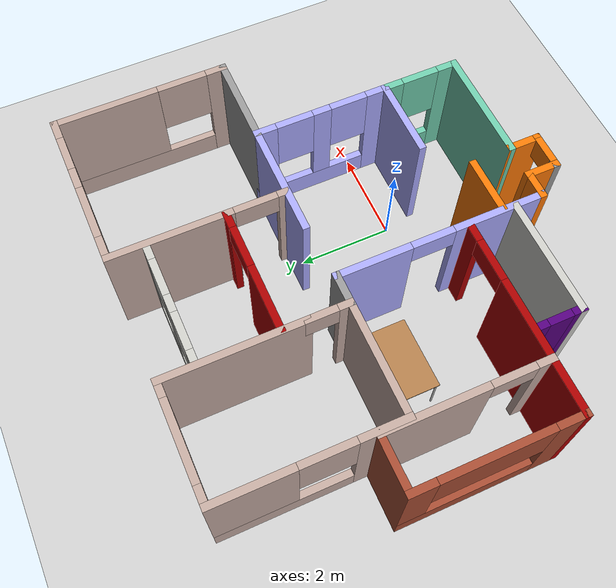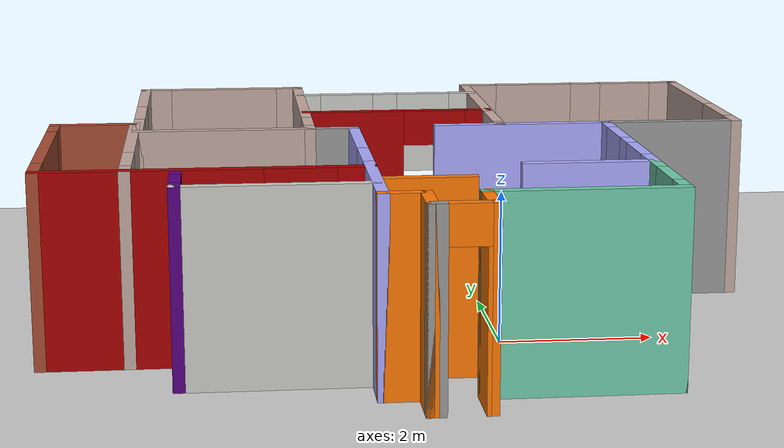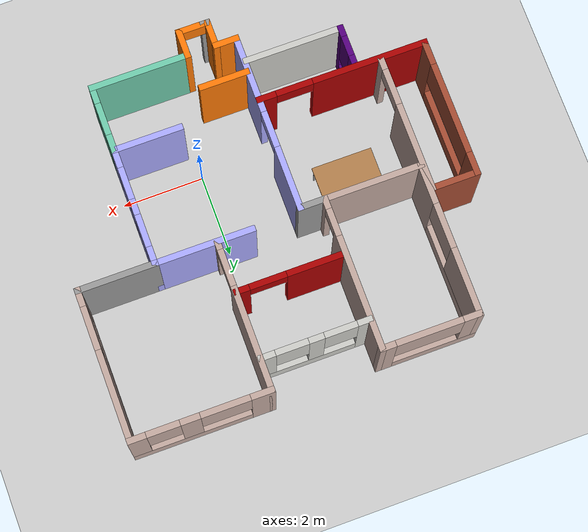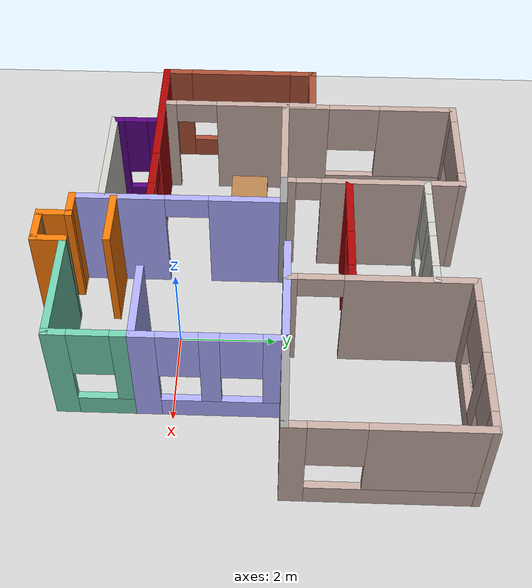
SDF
<sdf version="1.6">
 <world name="default">
  <model name="ground_plane">
   <static>1</static>
   <link name="link">
    <collision name="collision">
     <geometry><plane><normal>0 0 1</normal><size>100 100</size></plane></geometry>
     <surface>
      <contact><collide_bitmask>65535</collide_bitmask></contact>
      <friction><ode><mu>100</mu><mu2>50</mu2></ode></friction>
     </surface>
    </collision>
    <visual name="visual">
     <cast_shadows>0</cast_shadows>
     <geometry><plane><normal>0 0 1</normal><size>100 100</size></plane></geometry>
     <material>
      <script><uri>file://media/materials/scripts/gazebo.material</uri><name>Gazebo/Grey</name></script>
     </material>
    </visual>
   </link>
  </model>
  <model name="homeGoChaseIt">
   <pose>-1.07958 1.48988 0 0 -0 0</pose>
   <link name="Wall_0">
    <pose>0.249581 -4.33988 0 0 -0 0</pose>
    <visual name="Wall_0_Visual_0">
     <pose>-0.348103 0 1.25 0 -0 0</pose>
     <geometry><box><size>0.053794 0.15 2.5</size></box></geometry>
     <material>
      <script><uri>file://media/materials/scripts/gazebo.material</uri><name>Gazebo/Grey</name></script>
      <ambient>0.996078 0.47451 0.0196078 1</ambient>
     </material>
     <meta><layer>0</layer></meta>
    </visual>
    <collision name="Wall_0_Collision_0">
     <geometry><box><size>0.053794 0.15 2.5</size></box></geometry>
     <pose>-0.348103 0 1.25 0 -0 0</pose>
    </collision>
    <visual name="Wall_0_Visual_1">
     <pose>0.326897 0 1.25 0 -0 0</pose>
     <geometry><box><size>0.096206 0.15 2.5</size></box></geometry>
     <material>
      <script><uri>file://media/materials/scripts/gazebo.material</uri><name>Gazebo/Grey</name></script>
      <ambient>0.996078 0.47451 0.0196078 1</ambient>
     </material>
     <meta><layer>0</layer></meta>
    </visual>
    <collision name="Wall_0_Collision_1">
     <geometry><box><size>0.096206 0.15 2.5</size></box></geometry>
     <pose>0.326897 0 1.25 0 -0 0</pose>
    </collision>
    <visual name="Wall_0_Visual_2">
     <pose>-0.021206 0 2.25 0 -0 0</pose>
     <geometry><box><size>0.6 0.15 0.5</size></box></geometry>
     <material>
      <script><uri>file://media/materials/scripts/gazebo.material</uri><name>Gazebo/Grey</name></script>
      <ambient>0.996078 0.47451 0.0196078 1</ambient>
     </material>
     <meta><layer>0</layer></meta>
    </visual>
    <collision name="Wall_0_Collision_2">
     <geometry><box><size>0.6 0.15 0.5</size></box></geometry>
     <pose>-0.021206 0 2.25 0 -0 0</pose>
    </collision>
   </link>
   <link name="Wall_1">
    <collision name="Wall_1_Collision">
     <geometry><box><size>0.75 0.15 2.5</size></box></geometry>
     <pose>0 0 1.25 0 -0 0</pose>
    </collision>
    <visual name="Wall_1_Visual">
     <pose>0 0 1.25 0 -0 0</pose>
     <geometry><box><size>0.75 0.15 2.5</size></box></geometry>
     <material>
      <script><uri>file://media/materials/scripts/gazebo.material</uri><name>Gazebo/Grey</name></script>
      <ambient>0.996078 0.47451 0.0196078 1</ambient>
     </material>
     <meta><layer>0</layer></meta>
    </visual>
    <pose>0.549581 -4.03988 0 0 -0 1.5708</pose>
   </link>
   <link name="Wall_12">
    <pose>-0.650419 -1.56488 0 0 -0 1.5708</pose>
    <visual name="Wall_12_Visual_0">
     <pose>-1.2585 0 1.25 0 -0 0</pose>
     <geometry><box><size>1.983 0.15 2.5</size></box></geometry>
     <material>
      <script><uri>file://media/materials/scripts/gazebo.material</uri><name>Gazebo/Grey</name></script>
      <ambient>0.666667 0.666667 1 1</ambient>
     </material>
     <meta><layer>0</layer></meta>
    </visual>
    <collision name="Wall_12_Collision_0">
     <geometry><box><size>1.983 0.15 2.5</size></box></geometry>
     <pose>-1.2585 0 1.25 0 -0 0</pose>
    </collision>
    <visual name="Wall_12_Visual_1">
     <pose>1.4415 0 1.25 0 -0 0</pose>
     <geometry><box><size>1.617 0.15 2.5</size></box></geometry>
     <material>
      <script><uri>file://media/materials/scripts/gazebo.material</uri><name>Gazebo/Grey</name></script>
      <ambient>0.666667 0.666667 1 1</ambient>
     </material>
     <meta><layer>0</layer></meta>
    </visual>
    <collision name="Wall_12_Collision_1">
     <geometry><box><size>1.617 0.15 2.5</size></box></geometry>
     <pose>1.4415 0 1.25 0 -0 0</pose>
    </collision>
    <visual name="Wall_12_Visual_2">
     <pose>0.183002 0 2.25 0 -0 0</pose>
     <geometry><box><size>0.9 0.15 0.5</size></box></geometry>
     <material>
      <script><uri>file://media/materials/scripts/gazebo.material</uri><name>Gazebo/Grey</name></script>
      <ambient>0.666667 0.666667 1 1</ambient>
     </material>
     <meta><layer>0</layer></meta>
    </visual>
    <collision name="Wall_12_Collision_2">
     <geometry><box><size>0.9 0.15 0.5</size></box></geometry>
     <pose>0.183002 0 2.25 0 -0 0</pose>
    </collision>
   </link>
   <link name="Wall_16">
    <collision name="Wall_16_Collision">
     <geometry><box><size>0.75 0.15 2.5</size></box></geometry>
     <pose>0 0 1.25 0 -0 0</pose>
    </collision>
    <visual name="Wall_16_Visual">
     <pose>0 0 1.25 0 -0 0</pose>
     <geometry><box><size>0.75 0.15 2.5</size></box></geometry>
     <material>
      <script><uri>file://media/materials/scripts/gazebo.material</uri><name>Gazebo/Grey</name></script>
      <ambient>1 1 1 1</ambient>
     </material>
     <meta><layer>0</layer></meta>
    </visual>
    <pose>-0.950419 0.610124 0 0 -0 3.14159</pose>
   </link>
   <link name="Wall_17">
    <pose>-1.25042 1.03512 0 0 -0 1.5708</pose>
    <visual name="Wall_17_Visual_0">
     <pose>-0.337999 0 1.25 0 -0 0</pose>
     <geometry><box><size>0.324002 0.15 2.5</size></box></geometry>
     <material>
      <script><uri>file://media/materials/scripts/gazebo.material</uri><name>Gazebo/Grey</name></script>
      <ambient>0.760784 0.662745 0.627451 1</ambient>
     </material>
     <meta><layer>0</layer></meta>
    </visual>
    <collision name="Wall_17_Collision_0">
     <geometry><box><size>0.324002 0.15 2.5</size></box></geometry>
     <pose>-0.337999 0 1.25 0 -0 0</pose>
    </collision>
    <visual name="Wall_17_Visual_1">
     <pose>0.162001 0 2.25 0 -0 0</pose>
     <geometry><box><size>0.675998 0.15 0.5</size></box></geometry>
     <material>
      <script><uri>file://media/materials/scripts/gazebo.material</uri><name>Gazebo/Grey</name></script>
      <ambient>0.760784 0.662745 0.627451 1</ambient>
     </material>
     <meta><layer>0</layer></meta>
    </visual>
    <collision name="Wall_17_Collision_1">
     <geometry><box><size>0.675998 0.15 0.5</size></box></geometry>
     <pose>0.162001 0 2.25 0 -0 0</pose>
    </collision>
   </link>
   <link name="Wall_2">
    <collision name="Wall_2_Collision">
     <geometry><box><size>2.5 0.15 2.5</size></box></geometry>
     <pose>0 0 1.25 0 -0 0</pose>
    </collision>
    <visual name="Wall_2_Visual">
     <pose>0 0 1.25 0 -0 0</pose>
     <geometry><box><size>2.5 0.15 2.5</size></box></geometry>
     <material>
      <script><uri>file://media/materials/scripts/gazebo.material</uri><name>Gazebo/Grey</name></script>
      <ambient>0.435294 0.796078 0.67451 1</ambient>
     </material>
     <meta><layer>0</layer></meta>
    </visual>
    <pose>1.72458 -3.73988 0 0 -0 0</pose>
   </link>
   <link name="Wall_21">
    <collision name="Wall_21_Collision">
     <geometry><box><size>3 0.15 2.5</size></box></geometry>
     <pose>0 0 1.25 0 -0 0</pose>
    </collision>
    <visual name="Wall_21_Visual">
     <pose>0 0 1.25 0 -0 0</pose>
     <geometry><box><size>3 0.15 2.5</size></box></geometry>
     <material>
      <script><uri>file://media/materials/scripts/gazebo.material</uri><name>Gazebo/Grey</name></script>
      <ambient>0.760784 0.662745 0.627451 1</ambient>
     </material>
     <meta><layer>0</layer></meta>
    </visual>
    <pose>-1.25042 2.88512 0 0 -0 1.5708</pose>
   </link>
   <link name="Wall_22">
    <pose>-2.42542 4.31012 0 0 -0 3.14159</pose>
    <visual name="Wall_22_Visual_0">
     <pose>-1.0479 0 1.25 0 -0 0</pose>
     <geometry><box><size>0.404205 0.15 2.5</size></box></geometry>
     <material>
      <script><uri>file://media/materials/scripts/gazebo.material</uri><name>Gazebo/Grey</name></script>
      <ambient>0.760784 0.662745 0.627451 1</ambient>
     </material>
     <meta><layer>0</layer></meta>
    </visual>
    <collision name="Wall_22_Collision_0">
     <geometry><box><size>0.404205 0.15 2.5</size></box></geometry>
     <pose>-1.0479 0 1.25 0 -0 0</pose>
    </collision>
    <visual name="Wall_22_Visual_1">
     <pose>0.202103 0 0.25 0 -0 0</pose>
     <geometry><box><size>2.09579 0.15 0.5</size></box></geometry>
     <material>
      <script><uri>file://media/materials/scripts/gazebo.material</uri><name>Gazebo/Grey</name></script>
      <ambient>0.760784 0.662745 0.627451 1</ambient>
     </material>
     <meta><layer>0</layer></meta>
    </visual>
    <collision name="Wall_22_Collision_1">
     <geometry><box><size>2.09579 0.15 0.5</size></box></geometry>
     <pose>0.202103 0 0.25 0 -0 0</pose>
    </collision>
    <visual name="Wall_22_Visual_2">
     <pose>1.0161 0 1.5 0 -0 0</pose>
     <geometry><box><size>0.467795 0.15 2</size></box></geometry>
     <material>
      <script><uri>file://media/materials/scripts/gazebo.material</uri><name>Gazebo/Grey</name></script>
      <ambient>0.760784 0.662745 0.627451 1</ambient>
     </material>
     <meta><layer>0</layer></meta>
    </visual>
    <collision name="Wall_22_Collision_2">
     <geometry><box><size>0.467795 0.15 2</size></box></geometry>
     <pose>1.0161 0 1.5 0 -0 0</pose>
    </collision>
    <visual name="Wall_22_Visual_3">
     <pose>-0.031795 0 1.9 0 -0 0</pose>
     <geometry><box><size>1.628 0.15 1.2</size></box></geometry>
     <material>
      <script><uri>file://media/materials/scripts/gazebo.material</uri><name>Gazebo/Grey</name></script>
      <ambient>0.760784 0.662745 0.627451 1</ambient>
     </material>
     <meta><layer>0</layer></meta>
    </visual>
    <collision name="Wall_22_Collision_3">
     <geometry><box><size>1.628 0.15 1.2</size></box></geometry>
     <pose>-0.031795 0 1.9 0 -0 0</pose>
    </collision>
   </link>
   <link name="Wall_26">
    <pose>0.079375 3.58613 0 0 -0 0</pose>
    <visual name="Wall_26_Visual_0">
     <pose>-1.1925 0 1.25 0 -0 0</pose>
     <geometry><box><size>0.365 0.15 2.5</size></box></geometry>
     <material>
      <script><uri>file://media/materials/scripts/gazebo.material</uri><name>Gazebo/CeilingTiled</name></script>
      <ambient>1 1 1 1</ambient>
     </material>
     <meta><layer>0</layer></meta>
    </visual>
    <collision name="Wall_26_Collision_0">
     <geometry><box><size>0.365 0.15 2.5</size></box></geometry>
     <pose>-1.1925 0 1.25 0 -0 0</pose>
    </collision>
    <visual name="Wall_26_Visual_1">
     <pose>0.1825 0 0.25 0 -0 0</pose>
     <geometry><box><size>2.385 0.15 0.5</size></box></geometry>
     <material>
      <script><uri>file://media/materials/scripts/gazebo.material</uri><name>Gazebo/CeilingTiled</name></script>
      <ambient>1 1 1 1</ambient>
     </material>
     <meta><layer>0</layer></meta>
    </visual>
    <collision name="Wall_26_Collision_1">
     <geometry><box><size>2.385 0.15 0.5</size></box></geometry>
     <pose>0.1825 0 0.25 0 -0 0</pose>
    </collision>
    <visual name="Wall_26_Visual_2">
     <pose>-0.0235 0 1.5 0 -0 0</pose>
     <geometry><box><size>0.373 0.15 2</size></box></geometry>
     <material>
      <script><uri>file://media/materials/scripts/gazebo.material</uri><name>Gazebo/CeilingTiled</name></script>
      <ambient>1 1 1 1</ambient>
     </material>
     <meta><layer>0</layer></meta>
    </visual>
    <collision name="Wall_26_Collision_2">
     <geometry><box><size>0.373 0.15 2</size></box></geometry>
     <pose>-0.0235 0 1.5 0 -0 0</pose>
    </collision>
    <visual name="Wall_26_Visual_3">
     <pose>1.169 0 1.5 0 -0 0</pose>
     <geometry><box><size>0.412 0.15 2</size></box></geometry>
     <material>
      <script><uri>file://media/materials/scripts/gazebo.material</uri><name>Gazebo/CeilingTiled</name></script>
      <ambient>1 1 1 1</ambient>
     </material>
     <meta><layer>0</layer></meta>
    </visual>
    <collision name="Wall_26_Collision_3">
     <geometry><box><size>0.412 0.15 2</size></box></geometry>
     <pose>1.169 0 1.5 0 -0 0</pose>
    </collision>
    <visual name="Wall_26_Visual_4">
     <pose>-0.61 0 1.9 0 -0 0</pose>
     <geometry><box><size>0.8 0.15 1.2</size></box></geometry>
     <material>
      <script><uri>file://media/materials/scripts/gazebo.material</uri><name>Gazebo/CeilingTiled</name></script>
      <ambient>1 1 1 1</ambient>
     </material>
     <meta><layer>0</layer></meta>
    </visual>
    <collision name="Wall_26_Collision_4">
     <geometry><box><size>0.8 0.15 1.2</size></box></geometry>
     <pose>-0.61 0 1.9 0 -0 0</pose>
    </collision>
    <visual name="Wall_26_Visual_5">
     <pose>0.563 0 1.9 0 -0 0</pose>
     <geometry><box><size>0.8 0.15 1.2</size></box></geometry>
     <material>
      <script><uri>file://media/materials/scripts/gazebo.material</uri><name>Gazebo/CeilingTiled</name></script>
      <ambient>1 1 1 1</ambient>
     </material>
     <meta><layer>0</layer></meta>
    </visual>
    <collision name="Wall_26_Collision_5">
     <geometry><box><size>0.8 0.15 1.2</size></box></geometry>
     <pose>0.563 0 1.9 0 -0 0</pose>
    </collision>
   </link>
   <link name="Wall_3">
    <pose>2.89958 -2.93988 0 0 -0 1.5708</pose>
    <visual name="Wall_3_Visual_0">
     <pose>-0.634749 0 1.25 0 -0 0</pose>
     <geometry><box><size>0.480502 0.15 2.5</size></box></geometry>
     <material>
      <script><uri>file://media/materials/scripts/gazebo.material</uri><name>Gazebo/Grey</name></script>
      <ambient>0.435294 0.796078 0.67451 1</ambient>
     </material>
     <meta><layer>0</layer></meta>
    </visual>
    <collision name="Wall_3_Collision_0">
     <geometry><box><size>0.480502 0.15 2.5</size></box></geometry>
     <pose>-0.634749 0 1.25 0 -0 0</pose>
    </collision>
    <visual name="Wall_3_Visual_1">
     <pose>0.240251 0 0.25 0 -0 0</pose>
     <geometry><box><size>1.2695 0.15 0.5</size></box></geometry>
     <material>
      <script><uri>file://media/materials/scripts/gazebo.material</uri><name>Gazebo/Grey</name></script>
      <ambient>0.435294 0.796078 0.67451 1</ambient>
     </material>
     <meta><layer>0</layer></meta>
    </visual>
    <collision name="Wall_3_Collision_1">
     <geometry><box><size>1.2695 0.15 0.5</size></box></geometry>
     <pose>0.240251 0 0.25 0 -0 0</pose>
    </collision>
    <visual name="Wall_3_Visual_2">
     <pose>0.640251 0 1.5 0 -0 0</pose>
     <geometry><box><size>0.469498 0.15 2</size></box></geometry>
     <material>
      <script><uri>file://media/materials/scripts/gazebo.material</uri><name>Gazebo/Grey</name></script>
      <ambient>0.435294 0.796078 0.67451 1</ambient>
     </material>
     <meta><layer>0</layer></meta>
    </visual>
    <collision name="Wall_3_Collision_2">
     <geometry><box><size>0.469498 0.15 2</size></box></geometry>
     <pose>0.640251 0 1.5 0 -0 0</pose>
    </collision>
    <visual name="Wall_3_Visual_3">
     <pose>0.005502 0 1.9 0 -0 0</pose>
     <geometry><box><size>0.8 0.15 1.2</size></box></geometry>
     <material>
      <script><uri>file://media/materials/scripts/gazebo.material</uri><name>Gazebo/Grey</name></script>
      <ambient>0.435294 0.796078 0.67451 1</ambient>
     </material>
     <meta><layer>0</layer></meta>
    </visual>
    <collision name="Wall_3_Collision_3">
     <geometry><box><size>0.8 0.15 1.2</size></box></geometry>
     <pose>0.005502 0 1.9 0 -0 0</pose>
    </collision>
   </link>
   <link name="Wall_36">
    <collision name="Wall_36_Collision">
     <geometry><box><size>0.25 0.15 2.5</size></box></geometry>
     <pose>0 0 1.25 0 -0 0</pose>
    </collision>
    <visual name="Wall_36_Visual">
     <pose>0 0 1.25 0 -0 0</pose>
     <geometry><box><size>0.25 0.15 2.5</size></box></geometry>
     <material>
      <script><uri>file://media/materials/scripts/gazebo.material</uri><name>Gazebo/Grey</name></script>
      <ambient>1 1 1 1</ambient>
     </material>
     <meta><layer>0</layer></meta>
    </visual>
    <pose>-0.100419 -4.33988 0 0 -0 3.14159</pose>
   </link>
   <link name="Wall_37">
    <collision name="Wall_37_Collision">
     <geometry><box><size>0.75 0.15 2.5</size></box></geometry>
     <pose>0 0 1.25 0 -0 0</pose>
    </collision>
    <visual name="Wall_37_Visual">
     <pose>0 0 1.25 0 -0 0</pose>
     <geometry><box><size>0.75 0.15 2.5</size></box></geometry>
     <material>
      <script><uri>file://media/materials/scripts/gazebo.material</uri><name>Gazebo/Grey</name></script>
      <ambient>0.996078 0.47451 0.0196078 1</ambient>
     </material>
     <meta><layer>0</layer></meta>
    </visual>
    <pose>-0.150419 -4.03988 0 0 -0 1.5708</pose>
   </link>
   <link name="Wall_38">
    <collision name="Wall_38_Collision">
     <geometry><box><size>0.65 0.15 2.5</size></box></geometry>
     <pose>0 0 1.25 0 -0 0</pose>
    </collision>
    <visual name="Wall_38_Visual">
     <pose>0 0 1.25 0 -0 0</pose>
     <geometry><box><size>0.65 0.15 2.5</size></box></geometry>
     <material>
      <script><uri>file://media/materials/scripts/gazebo.material</uri><name>Gazebo/Grey</name></script>
      <ambient>0.996078 0.47451 0.0196078 1</ambient>
     </material>
     <meta><layer>0</layer></meta>
    </visual>
    <pose>-0.400419 -3.73988 0 0 -0 3.14159</pose>
   </link>
   <link name="Wall_40">
    <collision name="Wall_40_Collision">
     <geometry><box><size>2.5 0.15 2.5</size></box></geometry>
     <pose>0 0 1.25 0 -0 0</pose>
    </collision>
    <visual name="Wall_40_Visual">
     <pose>0 0 1.25 0 -0 0</pose>
     <geometry><box><size>2.5 0.15 2.5</size></box></geometry>
     <material>
      <script><uri>file://media/materials/scripts/gazebo.material</uri><name>Gazebo/Grey</name></script>
      <ambient>0.760784 0.662745 0.627451 1</ambient>
     </material>
     <meta><layer>0</layer></meta>
    </visual>
    <pose>-2.42542 0.610124 0 0 -0 3.14159</pose>
   </link>
   <link name="Wall_41">
    <pose>-3.60042 2.46012 0 0 -0 1.5708</pose>
    <visual name="Wall_41_Visual_0">
     <pose>-1.40162 0 1.25 0 -0 0</pose>
     <geometry><box><size>1.04675 0.15 2.5</size></box></geometry>
     <material>
      <script><uri>file://media/materials/scripts/gazebo.material</uri><name>Gazebo/Grey</name></script>
      <ambient>0.760784 0.662745 0.627451 1</ambient>
     </material>
     <meta><layer>0</layer></meta>
    </visual>
    <collision name="Wall_41_Collision_0">
     <geometry><box><size>1.04675 0.15 2.5</size></box></geometry>
     <pose>-1.40162 0 1.25 0 -0 0</pose>
    </collision>
    <visual name="Wall_41_Visual_1">
     <pose>0.523376 0 0.25 0 -0 0</pose>
     <geometry><box><size>2.80325 0.15 0.5</size></box></geometry>
     <material>
      <script><uri>file://media/materials/scripts/gazebo.material</uri><name>Gazebo/Grey</name></script>
      <ambient>0.760784 0.662745 0.627451 1</ambient>
     </material>
     <meta><layer>0</layer></meta>
    </visual>
    <collision name="Wall_41_Collision_1">
     <geometry><box><size>2.80325 0.15 0.5</size></box></geometry>
     <pose>0.523376 0 0.25 0 -0 0</pose>
    </collision>
    <visual name="Wall_41_Visual_2">
     <pose>1.07863 0 1.5 0 -0 0</pose>
     <geometry><box><size>1.69275 0.15 2</size></box></geometry>
     <material>
      <script><uri>file://media/materials/scripts/gazebo.material</uri><name>Gazebo/Grey</name></script>
      <ambient>0.760784 0.662745 0.627451 1</ambient>
     </material>
     <meta><layer>0</layer></meta>
    </visual>
    <collision name="Wall_41_Collision_2">
     <geometry><box><size>1.69275 0.15 2</size></box></geometry>
     <pose>1.07863 0 1.5 0 -0 0</pose>
    </collision>
    <visual name="Wall_41_Visual_3">
     <pose>-0.322998 0 1.9 0 -0 0</pose>
     <geometry><box><size>1.1105 0.15 1.2</size></box></geometry>
     <material>
      <script><uri>file://media/materials/scripts/gazebo.material</uri><name>Gazebo/Grey</name></script>
      <ambient>0.760784 0.662745 0.627451 1</ambient>
     </material>
     <meta><layer>0</layer></meta>
    </visual>
    <collision name="Wall_41_Collision_3">
     <geometry><box><size>1.1105 0.15 1.2</size></box></geometry>
     <pose>-0.322998 0 1.9 0 -0 0</pose>
    </collision>
   </link>
   <link name="Wall_43">
    <collision name="Wall_43_Collision">
     <geometry><box><size>2 0.15 2.5</size></box></geometry>
     <pose>0 0 1.25 0 -0 0</pose>
    </collision>
    <visual name="Wall_43_Visual">
     <pose>0 0 1.25 0 -0 0</pose>
     <geometry><box><size>2 0.15 2.5</size></box></geometry>
     <material>
      <script><uri>file://media/materials/scripts/gazebo.material</uri><name>Gazebo/Grey</name></script>
      <ambient>1 1 1 1</ambient>
     </material>
     <meta><layer>0</layer></meta>
    </visual>
    <pose>3.82458 0.710124 0 0 -0 0</pose>
   </link>
   <link name="Wall_44">
    <pose>4.74958 2.51012 0 0 -0 1.5708</pose>
    <visual name="Wall_44_Visual_0">
     <pose>-1.64312 0 1.25 0 -0 0</pose>
     <geometry><box><size>0.463752 0.15 2.5</size></box></geometry>
     <material>
      <script><uri>file://media/materials/scripts/gazebo.material</uri><name>Gazebo/Grey</name></script>
      <ambient>0.760784 0.662745 0.627451 1</ambient>
     </material>
     <meta><layer>0</layer></meta>
    </visual>
    <collision name="Wall_44_Collision_0">
     <geometry><box><size>0.463752 0.15 2.5</size></box></geometry>
     <pose>-1.64312 0 1.25 0 -0 0</pose>
    </collision>
    <visual name="Wall_44_Visual_1">
     <pose>0.231876 0 0.25 0 -0 0</pose>
     <geometry><box><size>3.28625 0.15 0.5</size></box></geometry>
     <material>
      <script><uri>file://media/materials/scripts/gazebo.material</uri><name>Gazebo/Grey</name></script>
      <ambient>0.760784 0.662745 0.627451 1</ambient>
     </material>
     <meta><layer>0</layer></meta>
    </visual>
    <collision name="Wall_44_Collision_1">
     <geometry><box><size>3.28625 0.15 0.5</size></box></geometry>
     <pose>0.231876 0 0.25 0 -0 0</pose>
    </collision>
    <visual name="Wall_44_Visual_2">
     <pose>0.761251 0 1.5 0 -0 0</pose>
     <geometry><box><size>2.2275 0.15 2</size></box></geometry>
     <material>
      <script><uri>file://media/materials/scripts/gazebo.material</uri><name>Gazebo/Grey</name></script>
      <ambient>0.760784 0.662745 0.627451 1</ambient>
     </material>
     <meta><layer>0</layer></meta>
    </visual>
    <collision name="Wall_44_Collision_2">
     <geometry><box><size>2.2275 0.15 2</size></box></geometry>
     <pose>0.761251 0 1.5 0 -0 0</pose>
    </collision>
    <visual name="Wall_44_Visual_3">
     <pose>-0.881873 0 1.9 0 -0 0</pose>
     <geometry><box><size>1.05875 0.15 1.2</size></box></geometry>
     <material>
      <script><uri>file://media/materials/scripts/gazebo.material</uri><name>Gazebo/Grey</name></script>
      <ambient>0.760784 0.662745 0.627451 1</ambient>
     </material>
     <meta><layer>0</layer></meta>
    </visual>
    <collision name="Wall_44_Collision_3">
     <geometry><box><size>1.05875 0.15 1.2</size></box></geometry>
     <pose>-0.881873 0 1.9 0 -0 0</pose>
    </collision>
   </link>
   <link name="Wall_46">
    <pose>1.40138 2.53988 0 0 -0 1.5708</pose>
    <visual name="Wall_46_Visual_0">
     <pose>-1.752 0 1.25 0 -0 0</pose>
     <geometry><box><size>0.246 0.15 2.5</size></box></geometry>
     <material>
      <script><uri>file://media/materials/scripts/gazebo.material</uri><name>Gazebo/Grey</name></script>
      <ambient>0.760784 0.662745 0.627451 1</ambient>
     </material>
     <meta><layer>0</layer></meta>
    </visual>
    <collision name="Wall_46_Collision_0">
     <geometry><box><size>0.246 0.15 2.5</size></box></geometry>
     <pose>-1.752 0 1.25 0 -0 0</pose>
    </collision>
    <visual name="Wall_46_Visual_1">
     <pose>0.573 0 1.25 0 -0 0</pose>
     <geometry><box><size>2.604 0.15 2.5</size></box></geometry>
     <material>
      <script><uri>file://media/materials/scripts/gazebo.material</uri><name>Gazebo/Grey</name></script>
      <ambient>0.760784 0.662745 0.627451 1</ambient>
     </material>
     <meta><layer>0</layer></meta>
    </visual>
    <collision name="Wall_46_Collision_1">
     <geometry><box><size>2.604 0.15 2.5</size></box></geometry>
     <pose>0.573 0 1.25 0 -0 0</pose>
    </collision>
    <visual name="Wall_46_Visual_2">
     <pose>-1.179 0 2.25 0 -0 0</pose>
     <geometry><box><size>0.9 0.15 0.5</size></box></geometry>
     <material>
      <script><uri>file://media/materials/scripts/gazebo.material</uri><name>Gazebo/Grey</name></script>
      <ambient>0.760784 0.662745 0.627451 1</ambient>
     </material>
     <meta><layer>0</layer></meta>
    </visual>
    <collision name="Wall_46_Collision_2">
     <geometry><box><size>0.9 0.15 0.5</size></box></geometry>
     <pose>-1.179 0 2.25 0 -0 0</pose>
    </collision>
   </link>
   <link name="Wall_47">
    <pose>3.07638 4.33988 0 0 -0 0</pose>
    <visual name="Wall_47_Visual_0">
     <pose>-1.464 0 1.25 0 -0 0</pose>
     <geometry><box><size>0.572 0.15 2.5</size></box></geometry>
     <material>
      <script><uri>file://media/materials/scripts/gazebo.material</uri><name>Gazebo/Grey</name></script>
      <ambient>0.760784 0.662745 0.627451 1</ambient>
     </material>
     <meta><layer>0</layer></meta>
    </visual>
    <collision name="Wall_47_Collision_0">
     <geometry><box><size>0.572 0.15 2.5</size></box></geometry>
     <pose>-1.464 0 1.25 0 -0 0</pose>
    </collision>
    <visual name="Wall_47_Visual_1">
     <pose>0.286 0 0.25 0 -0 0</pose>
     <geometry><box><size>2.928 0.15 0.5</size></box></geometry>
     <material>
      <script><uri>file://media/materials/scripts/gazebo.material</uri><name>Gazebo/Grey</name></script>
      <ambient>0.760784 0.662745 0.627451 1</ambient>
     </material>
     <meta><layer>0</layer></meta>
    </visual>
    <collision name="Wall_47_Collision_1">
     <geometry><box><size>2.928 0.15 0.5</size></box></geometry>
     <pose>0.286 0 0.25 0 -0 0</pose>
    </collision>
    <visual name="Wall_47_Visual_2">
     <pose>0.257 0 1.5 0 -0 0</pose>
     <geometry><box><size>0.4765 0.15 2</size></box></geometry>
     <material>
      <script><uri>file://media/materials/scripts/gazebo.material</uri><name>Gazebo/Grey</name></script>
      <ambient>0.760784 0.662745 0.627451 1</ambient>
     </material>
     <meta><layer>0</layer></meta>
    </visual>
    <collision name="Wall_47_Collision_2">
     <geometry><box><size>0.4765 0.15 2</size></box></geometry>
     <pose>0.257 0 1.5 0 -0 0</pose>
    </collision>
    <visual name="Wall_47_Visual_3">
     <pose>1.52262 0 1.5 0 -0 0</pose>
     <geometry><box><size>0.45475 0.15 2</size></box></geometry>
     <material>
      <script><uri>file://media/materials/scripts/gazebo.material</uri><name>Gazebo/Grey</name></script>
      <ambient>0.760784 0.662745 0.627451 1</ambient>
     </material>
     <meta><layer>0</layer></meta>
    </visual>
    <collision name="Wall_47_Collision_3">
     <geometry><box><size>0.45475 0.15 2</size></box></geometry>
     <pose>1.52262 0 1.5 0 -0 0</pose>
    </collision>
    <visual name="Wall_47_Visual_4">
     <pose>-0.579625 0 1.9 0 -0 0</pose>
     <geometry><box><size>1.19675 0.15 1.2</size></box></geometry>
     <material>
      <script><uri>file://media/materials/scripts/gazebo.material</uri><name>Gazebo/Grey</name></script>
      <ambient>0.760784 0.662745 0.627451 1</ambient>
     </material>
     <meta><layer>0</layer></meta>
    </visual>
    <collision name="Wall_47_Collision_4">
     <geometry><box><size>1.19675 0.15 1.2</size></box></geometry>
     <pose>-0.579625 0 1.9 0 -0 0</pose>
    </collision>
    <visual name="Wall_47_Visual_5">
     <pose>0.89525 0 1.9 0 -0 0</pose>
     <geometry><box><size>0.8 0.15 1.2</size></box></geometry>
     <material>
      <script><uri>file://media/materials/scripts/gazebo.material</uri><name>Gazebo/Grey</name></script>
      <ambient>0.760784 0.662745 0.627451 1</ambient>
     </material>
     <meta><layer>0</layer></meta>
    </visual>
    <collision name="Wall_47_Collision_5">
     <geometry><box><size>0.8 0.15 1.2</size></box></geometry>
     <pose>0.89525 0 1.9 0 -0 0</pose>
    </collision>
   </link>
   <link name="Wall_49">
    <pose>-2.70138 -2.14087 0 0 -0 3.14159</pose>
    <visual name="Wall_49_Visual_0">
     <pose>-1.88125 0 1.25 0 -0 0</pose>
     <geometry><box><size>0.4875 0.15 2.5</size></box></geometry>
     <material>
      <script><uri>file://media/materials/scripts/gazebo.material</uri><name>Gazebo/Grey</name></script>
      <ambient>0.666667 0 0 1</ambient>
     </material>
     <meta><layer>0</layer></meta>
    </visual>
    <collision name="Wall_49_Collision_0">
     <geometry><box><size>0.4875 0.15 2.5</size></box></geometry>
     <pose>-1.88125 0 1.25 0 -0 0</pose>
    </collision>
    <visual name="Wall_49_Visual_1">
     <pose>0.69375 0 1.25 0 -0 0</pose>
     <geometry><box><size>2.8625 0.15 2.5</size></box></geometry>
     <material>
      <script><uri>file://media/materials/scripts/gazebo.material</uri><name>Gazebo/Grey</name></script>
      <ambient>0.666667 0 0 1</ambient>
     </material>
     <meta><layer>0</layer></meta>
    </visual>
    <collision name="Wall_49_Collision_1">
     <geometry><box><size>2.8625 0.15 2.5</size></box></geometry>
     <pose>0.69375 0 1.25 0 -0 0</pose>
    </collision>
    <visual name="Wall_49_Visual_2">
     <pose>-1.1875 0 2.25 0 -0 0</pose>
     <geometry><box><size>0.9 0.15 0.5</size></box></geometry>
     <material>
      <script><uri>file://media/materials/scripts/gazebo.material</uri><name>Gazebo/Grey</name></script>
      <ambient>0.666667 0 0 1</ambient>
     </material>
     <meta><layer>0</layer></meta>
    </visual>
    <collision name="Wall_49_Collision_2">
     <geometry><box><size>0.9 0.15 0.5</size></box></geometry>
     <pose>-1.1875 0 2.25 0 -0 0</pose>
    </collision>
   </link>
   <link name="Wall_5">
    <collision name="Wall_5_Collision">
     <geometry><box><size>1.75 0.15 2.5</size></box></geometry>
     <pose>0 0 1.25 0 -0 0</pose>
    </collision>
    <visual name="Wall_5_Visual">
     <pose>0 0 1.25 0 -0 0</pose>
     <geometry><box><size>1.75 0.15 2.5</size></box></geometry>
     <material>
      <script><uri>file://media/materials/scripts/gazebo.material</uri><name>Gazebo/Grey</name></script>
      <ambient>0.666667 0.666667 1 1</ambient>
     </material>
     <meta><layer>0</layer></meta>
    </visual>
    <pose>2.09958 -2.13988 0 0 -0 3.14159</pose>
   </link>
   <link name="Wall_50">
    <pose>-4.75138 -0.465874 0 0 -0 1.5708</pose>
    <visual name="Wall_50_Visual_0">
     <pose>-1.42519 0 1.25 0 -0 0</pose>
     <geometry><box><size>0.649625 0.15 2.5</size></box></geometry>
     <material>
      <script><uri>file://media/materials/scripts/gazebo.material</uri><name>Gazebo/Bricks</name></script>
      <ambient>0.435294 0.796078 0.67451 1</ambient>
     </material>
     <meta><layer>0</layer></meta>
    </visual>
    <collision name="Wall_50_Collision_0">
     <geometry><box><size>0.649625 0.15 2.5</size></box></geometry>
     <pose>-1.42519 0 1.25 0 -0 0</pose>
    </collision>
    <visual name="Wall_50_Visual_1">
     <pose>0.324812 0 0.25 0 -0 0</pose>
     <geometry><box><size>2.85038 0.15 0.5</size></box></geometry>
     <material>
      <script><uri>file://media/materials/scripts/gazebo.material</uri><name>Gazebo/Bricks</name></script>
      <ambient>0.435294 0.796078 0.67451 1</ambient>
     </material>
     <meta><layer>0</layer></meta>
    </visual>
    <collision name="Wall_50_Collision_1">
     <geometry><box><size>2.85038 0.15 0.5</size></box></geometry>
     <pose>0.324812 0 0.25 0 -0 0</pose>
    </collision>
    <visual name="Wall_50_Visual_2">
     <pose>1.45794 0 1.5 0 -0 0</pose>
     <geometry><box><size>0.584125 0.15 2</size></box></geometry>
     <material>
      <script><uri>file://media/materials/scripts/gazebo.material</uri><name>Gazebo/Bricks</name></script>
      <ambient>0.435294 0.796078 0.67451 1</ambient>
     </material>
     <meta><layer>0</layer></meta>
    </visual>
    <collision name="Wall_50_Collision_2">
     <geometry><box><size>0.584125 0.15 2</size></box></geometry>
     <pose>1.45794 0 1.5 0 -0 0</pose>
    </collision>
    <visual name="Wall_50_Visual_3">
     <pose>0.03275 0 1.9 0 -0 0</pose>
     <geometry><box><size>2.26625 0.15 1.2</size></box></geometry>
     <material>
      <script><uri>file://media/materials/scripts/gazebo.material</uri><name>Gazebo/Bricks</name></script>
      <ambient>0.435294 0.796078 0.67451 1</ambient>
     </material>
     <meta><layer>0</layer></meta>
    </visual>
    <collision name="Wall_50_Collision_3">
     <geometry><box><size>2.26625 0.15 1.2</size></box></geometry>
     <pose>0.03275 0 1.9 0 -0 0</pose>
    </collision>
   </link>
   <link name="Wall_51">
    <collision name="Wall_51_Collision">
     <geometry><box><size>1.25 0.15 2.5</size></box></geometry>
     <pose>0 0 1.25 0 -0 0</pose>
    </collision>
    <visual name="Wall_51_Visual">
     <pose>0 0 1.25 0 -0 0</pose>
     <geometry><box><size>1.25 0.15 2.5</size></box></geometry>
     <material>
      <script><uri>file://media/materials/scripts/gazebo.material</uri><name>Gazebo/Bricks</name></script>
      <ambient>0.435294 0.796078 0.67451 1</ambient>
     </material>
     <meta><layer>0</layer></meta>
    </visual>
    <pose>-4.20137 1.20913 0 0 -0 0</pose>
   </link>
   <link name="Wall_52">
    <pose>-3.65137 -0.465874 0 0 0 -1.5708</pose>
    <visual name="Wall_52_Visual_0">
     <pose>-0.642 0 1.25 0 -0 0</pose>
     <geometry><box><size>2.216 0.15 2.5</size></box></geometry>
     <material>
      <script><uri>file://media/materials/scripts/gazebo.material</uri><name>Gazebo/Grey</name></script>
      <ambient>0.760784 0.662745 0.627451 1</ambient>
     </material>
     <meta><layer>0</layer></meta>
    </visual>
    <collision name="Wall_52_Collision_0">
     <geometry><box><size>2.216 0.15 2.5</size></box></geometry>
     <pose>-0.642 0 1.25 0 -0 0</pose>
    </collision>
    <visual name="Wall_52_Visual_1">
     <pose>1.558 0 1.25 0 -0 0</pose>
     <geometry><box><size>0.384 0.15 2.5</size></box></geometry>
     <material>
      <script><uri>file://media/materials/scripts/gazebo.material</uri><name>Gazebo/Grey</name></script>
      <ambient>0.760784 0.662745 0.627451 1</ambient>
     </material>
     <meta><layer>0</layer></meta>
    </visual>
    <collision name="Wall_52_Collision_1">
     <geometry><box><size>0.384 0.15 2.5</size></box></geometry>
     <pose>1.558 0 1.25 0 -0 0</pose>
    </collision>
    <visual name="Wall_52_Visual_2">
     <pose>0.916 0 2.25 0 -0 0</pose>
     <geometry><box><size>0.9 0.15 0.5</size></box></geometry>
     <material>
      <script><uri>file://media/materials/scripts/gazebo.material</uri><name>Gazebo/Grey</name></script>
      <ambient>0.760784 0.662745 0.627451 1</ambient>
     </material>
     <meta><layer>0</layer></meta>
    </visual>
    <collision name="Wall_52_Collision_2">
     <geometry><box><size>0.9 0.15 0.5</size></box></geometry>
     <pose>0.916 0 2.25 0 -0 0</pose>
    </collision>
   </link>
   <link name="Wall_55">
    <pose>0.079375 1.96463 0 0 -0 0</pose>
    <visual name="Wall_55_Visual_0">
     <pose>-0.639625 0 1.25 0 -0 0</pose>
     <geometry><box><size>1.47075 0.15 2.5</size></box></geometry>
     <material>
      <script><uri>file://media/materials/scripts/gazebo.material</uri><name>Gazebo/Grey</name></script>
      <ambient>0.666667 0 0 1</ambient>
     </material>
     <meta><layer>0</layer></meta>
    </visual>
    <collision name="Wall_55_Collision_0">
     <geometry><box><size>1.47075 0.15 2.5</size></box></geometry>
     <pose>-0.639625 0 1.25 0 -0 0</pose>
    </collision>
    <visual name="Wall_55_Visual_1">
     <pose>1.18538 0 1.25 0 -0 0</pose>
     <geometry><box><size>0.37925 0.15 2.5</size></box></geometry>
     <material>
      <script><uri>file://media/materials/scripts/gazebo.material</uri><name>Gazebo/Grey</name></script>
      <ambient>0.666667 0 0 1</ambient>
     </material>
     <meta><layer>0</layer></meta>
    </visual>
    <collision name="Wall_55_Collision_1">
     <geometry><box><size>0.37925 0.15 2.5</size></box></geometry>
     <pose>1.18538 0 1.25 0 -0 0</pose>
    </collision>
    <visual name="Wall_55_Visual_2">
     <pose>0.54575 0 2.25 0 -0 0</pose>
     <geometry><box><size>0.9 0.15 0.5</size></box></geometry>
     <material>
      <script><uri>file://media/materials/scripts/gazebo.material</uri><name>Gazebo/Grey</name></script>
      <ambient>0.666667 0 0 1</ambient>
     </material>
     <meta><layer>0</layer></meta>
    </visual>
    <collision name="Wall_55_Collision_2">
     <geometry><box><size>0.9 0.15 0.5</size></box></geometry>
     <pose>0.54575 0 2.25 0 -0 0</pose>
    </collision>
   </link>
   <link name="Wall_57">
    <collision name="Wall_57_Collision">
     <geometry><box><size>2.5 0.15 2.5</size></box></geometry>
     <pose>0 0 1.25 0 -0 0</pose>
    </collision>
    <visual name="Wall_57_Visual">
     <pose>0 0 1.25 0 -0 0</pose>
     <geometry><box><size>2.5 0.15 2.5</size></box></geometry>
     <material>
      <script><uri>file://media/materials/scripts/gazebo.material</uri><name>Gazebo/CeilingTiled</name></script>
      <ambient>1 1 1 1</ambient>
     </material>
     <meta><layer>0</layer></meta>
    </visual>
    <pose>-1.86088 -3.14137 0 0 -0 3.14159</pose>
   </link>
   <link name="Wall_58">
    <pose>-3.03587 -2.71637 0 0 -0 1.5708</pose>
    <visual name="Wall_58_Visual_0">
     <pose>-0.354625 0 1.25 0 -0 0</pose>
     <geometry><box><size>0.29075 0.15 2.5</size></box></geometry>
     <material>
      <script><uri>file://media/materials/scripts/gazebo.material</uri><name>Gazebo/Grey</name></script>
      <ambient>0.333333 0 0.498039 1</ambient>
     </material>
     <meta><layer>0</layer></meta>
    </visual>
    <collision name="Wall_58_Collision_0">
     <geometry><box><size>0.29075 0.15 2.5</size></box></geometry>
     <pose>-0.354625 0 1.25 0 -0 0</pose>
    </collision>
    <visual name="Wall_58_Visual_1">
     <pose>0.145375 0 0.25 0 -0 0</pose>
     <geometry><box><size>0.70925 0.15 0.5</size></box></geometry>
     <material>
      <script><uri>file://media/materials/scripts/gazebo.material</uri><name>Gazebo/Grey</name></script>
      <ambient>0.333333 0 0.498039 1</ambient>
     </material>
     <meta><layer>0</layer></meta>
    </visual>
    <collision name="Wall_58_Collision_1">
     <geometry><box><size>0.70925 0.15 0.5</size></box></geometry>
     <pose>0.145375 0 0.25 0 -0 0</pose>
    </collision>
    <visual name="Wall_58_Visual_2">
     <pose>0.395375 0 1.5 0 -0 0</pose>
     <geometry><box><size>0.20925 0.15 2</size></box></geometry>
     <material>
      <script><uri>file://media/materials/scripts/gazebo.material</uri><name>Gazebo/Grey</name></script>
      <ambient>0.333333 0 0.498039 1</ambient>
     </material>
     <meta><layer>0</layer></meta>
    </visual>
    <collision name="Wall_58_Collision_2">
     <geometry><box><size>0.20925 0.15 2</size></box></geometry>
     <pose>0.395375 0 1.5 0 -0 0</pose>
    </collision>
    <visual name="Wall_58_Visual_3">
     <pose>0.04075 0 1.75 0 -0 0</pose>
     <geometry><box><size>0.5 0.15 1.5</size></box></geometry>
     <material>
      <script><uri>file://media/materials/scripts/gazebo.material</uri><name>Gazebo/Grey</name></script>
      <ambient>0.333333 0 0.498039 1</ambient>
     </material>
     <meta><layer>0</layer></meta>
    </visual>
    <collision name="Wall_58_Collision_3">
     <geometry><box><size>0.5 0.15 1.5</size></box></geometry>
     <pose>0.04075 0 1.75 0 -0 0</pose>
    </collision>
   </link>
   <link name="Wall_60">
    <collision name="Wall_60_Collision">
     <geometry><box><size>1.25 0.15 2.5</size></box></geometry>
     <pose>0 0 1.25 0 -0 0</pose>
    </collision>
    <visual name="Wall_60_Visual">
     <pose>0 0 1.25 0 -0 0</pose>
     <geometry><box><size>1.25 0.15 2.5</size></box></geometry>
     <material>
      <script><uri>file://media/materials/scripts/gazebo.material</uri><name>Gazebo/Grey</name></script>
      <ambient>0.996078 0.47451 0.0196078 1</ambient>
     </material>
     <meta><layer>0</layer></meta>
    </visual>
    <pose>-0.049625 -2.88262 0 0 -0 0</pose>
   </link>
   <link name="Wall_7">
    <pose>2.89958 -0.714876 0 0 -0 1.5708</pose>
    <visual name="Wall_7_Visual_0">
     <pose>-1.24037 0 1.25 0 -0 0</pose>
     <geometry><box><size>0.519252 0.15 2.5</size></box></geometry>
     <material>
      <script><uri>file://media/materials/scripts/gazebo.material</uri><name>Gazebo/Grey</name></script>
      <ambient>0.666667 0.666667 1 1</ambient>
     </material>
     <meta><layer>0</layer></meta>
    </visual>
    <collision name="Wall_7_Collision_0">
     <geometry><box><size>0.519252 0.15 2.5</size></box></geometry>
     <pose>-1.24037 0 1.25 0 -0 0</pose>
    </collision>
    <visual name="Wall_7_Visual_1">
     <pose>0.259626 0 0.25 0 -0 0</pose>
     <geometry><box><size>2.48075 0.15 0.5</size></box></geometry>
     <material>
      <script><uri>file://media/materials/scripts/gazebo.material</uri><name>Gazebo/Grey</name></script>
      <ambient>0.666667 0.666667 1 1</ambient>
     </material>
     <meta><layer>0</layer></meta>
    </visual>
    <collision name="Wall_7_Collision_1">
     <geometry><box><size>2.48075 0.15 0.5</size></box></geometry>
     <pose>0.259626 0 0.25 0 -0 0</pose>
    </collision>
    <visual name="Wall_7_Visual_2">
     <pose>0.014377 0 1.5 0 -0 0</pose>
     <geometry><box><size>0.39025 0.15 2</size></box></geometry>
     <material>
      <script><uri>file://media/materials/scripts/gazebo.material</uri><name>Gazebo/Grey</name></script>
      <ambient>0.666667 0.666667 1 1</ambient>
     </material>
     <meta><layer>0</layer></meta>
    </visual>
    <collision name="Wall_7_Collision_2">
     <geometry><box><size>0.39025 0.15 2</size></box></geometry>
     <pose>0.014377 0 1.5 0 -0 0</pose>
    </collision>
    <visual name="Wall_7_Visual_3">
     <pose>1.25475 0 1.5 0 -0 0</pose>
     <geometry><box><size>0.490498 0.15 2</size></box></geometry>
     <material>
      <script><uri>file://media/materials/scripts/gazebo.material</uri><name>Gazebo/Grey</name></script>
      <ambient>0.666667 0.666667 1 1</ambient>
     </material>
     <meta><layer>0</layer></meta>
    </visual>
    <collision name="Wall_7_Collision_3">
     <geometry><box><size>0.490498 0.15 2</size></box></geometry>
     <pose>1.25475 0 1.5 0 -0 0</pose>
    </collision>
    <visual name="Wall_7_Visual_4">
     <pose>-0.580748 0 1.9 0 -0 0</pose>
     <geometry><box><size>0.8 0.15 1.2</size></box></geometry>
     <material>
      <script><uri>file://media/materials/scripts/gazebo.material</uri><name>Gazebo/Grey</name></script>
      <ambient>0.666667 0.666667 1 1</ambient>
     </material>
     <meta><layer>0</layer></meta>
    </visual>
    <collision name="Wall_7_Collision_4">
     <geometry><box><size>0.8 0.15 1.2</size></box></geometry>
     <pose>-0.580748 0 1.9 0 -0 0</pose>
    </collision>
    <visual name="Wall_7_Visual_5">
     <pose>0.609502 0 1.9 0 -0 0</pose>
     <geometry><box><size>0.8 0.15 1.2</size></box></geometry>
     <material>
      <script><uri>file://media/materials/scripts/gazebo.material</uri><name>Gazebo/Grey</name></script>
      <ambient>0.666667 0.666667 1 1</ambient>
     </material>
     <meta><layer>0</layer></meta>
    </visual>
    <collision name="Wall_7_Collision_5">
     <geometry><box><size>0.8 0.15 1.2</size></box></geometry>
     <pose>0.609502 0 1.9 0 -0 0</pose>
    </collision>
   </link>
   <link name="Wall_8">
    <collision name="Wall_8_Collision">
     <geometry><box><size>2.5 0.15 2.5</size></box></geometry>
     <pose>0 0 1.25 0 -0 0</pose>
    </collision>
    <visual name="Wall_8_Visual">
     <pose>0 0 1.25 0 -0 0</pose>
     <geometry><box><size>2.5 0.15 2.5</size></box></geometry>
     <material>
      <script><uri>file://media/materials/scripts/gazebo.material</uri><name>Gazebo/Grey</name></script>
      <ambient>0.666667 0.666667 1 1</ambient>
     </material>
     <meta><layer>0</layer></meta>
    </visual>
    <pose>1.72458 0.710124 0 0 -0 3.14159</pose>
   </link>
   <static>1</static>
  </model>
  <model name="table">
   <static>1</static>
   <link name="link">
    <collision name="surface">
     <pose>0 0 1 0 -0 0</pose>
     <geometry><box><size>1.5 0.8 0.03</size></box></geometry>
     <surface><friction><ode><mu>0.6</mu><mu2>0.6</mu2></ode></friction></surface>
    </collision>
    <visual name="visual1">
     <pose>0 0 1 0 -0 0</pose>
     <geometry><box><size>1.5 0.8 0.03</size></box></geometry>
     <material>
      <script><uri>file://media/materials/scripts/gazebo.material</uri><name>Gazebo/Wood</name></script>
     </material>
    </visual>
    <collision name="front_left_leg">
     <pose>0.68 0.38 0.5 0 -0 0</pose>
     <geometry><cylinder><radius>0.02</radius><length>1</length></cylinder></geometry>
    </collision>
    <visual name="front_left_leg">
     <pose>0.68 0.38 0.5 0 -0 0</pose>
     <geometry><cylinder><radius>0.02</radius><length>1</length></cylinder></geometry>
     <material>
      <script><uri>file://media/materials/scripts/gazebo.material</uri><name>Gazebo/Grey</name></script>
     </material>
    </visual>
    <collision name="front_right_leg">
     <pose>0.68 -0.38 0.5 0 -0 0</pose>
     <geometry><cylinder><radius>0.02</radius><length>1</length></cylinder></geometry>
    </collision>
    <visual name="front_right_leg">
     <pose>0.68 -0.38 0.5 0 -0 0</pose>
     <geometry><cylinder><radius>0.02</radius><length>1</length></cylinder></geometry>
     <material>
      <script><uri>file://media/materials/scripts/gazebo.material</uri><name>Gazebo/Grey</name></script>
     </material>
    </visual>
    <collision name="back_right_leg">
     <pose>-0.68 -0.38 0.5 0 -0 0</pose>
     <geometry><cylinder><radius>0.02</radius><length>1</length></cylinder></geometry>
    </collision>
    <visual name="back_right_leg">
     <pose>-0.68 -0.38 0.5 0 -0 0</pose>
     <geometry><cylinder><radius>0.02</radius><length>1</length></cylinder></geometry>
     <material>
      <script><uri>file://media/materials/scripts/gazebo.material</uri><name>Gazebo/Grey</name></script>
     </material>
    </visual>
    <collision name="back_left_leg">
     <pose>-0.68 0.38 0.5 0 -0 0</pose>
     <geometry><cylinder><radius>0.02</radius><length>1</length></cylinder></geometry>
    </collision>
    <visual name="back_left_leg">
     <pose>-0.68 0.38 0.5 0 -0 0</pose>
     <geometry><cylinder><radius>0.02</radius><length>1</length></cylinder></geometry>
     <material>
      <script><uri>file://media/materials/scripts/gazebo.material</uri><name>Gazebo/Grey</name></script>
     </material>
    </visual>
   </link>
   <pose>-3.21299 1.32754 0 0 -0 0</pose>
  </model>
 </world>
</sdf>
